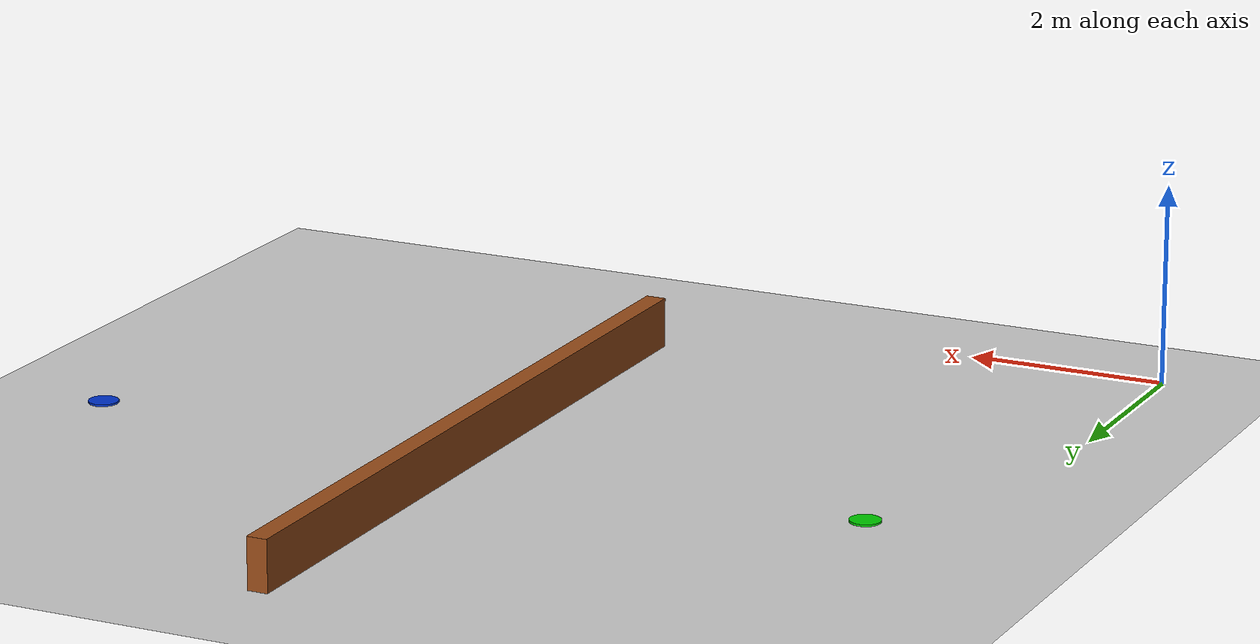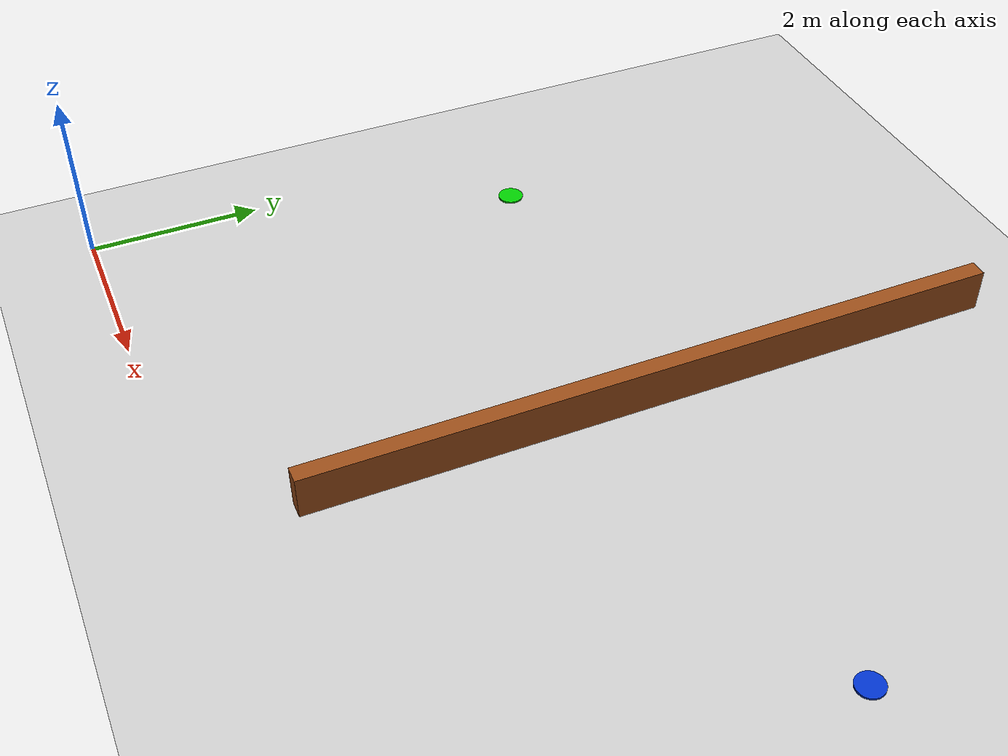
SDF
<?xml version="1.0" ?>
<sdf version="1.6">
  <world name="wall_obstacle_world">

    <physics name="default_physics" default="0" type="ode">
      <max_step_size>0.001</max_step_size>
      <real_time_factor>1</real_time_factor>
      <real_time_update_rate>1000</real_time_update_rate>
    </physics>

    <plugin name="gazebo_ros_state" filename="libgazebo_ros_state.so"/>

    <light name="sun" type="directional">
      <cast_shadows>true</cast_shadows>
      <pose>0 0 10 0 0 0</pose>
      <diffuse>1 1 1 1</diffuse>
      <specular>0.2 0.2 0.2 1</specular>
      <direction>-0.5 0.1 -0.9</direction>
    </light>

    <model name="ground_plane">
      <static>true</static>
      <link name="link">
        <collision name="collision">
          <geometry>
            <plane><normal>0 0 1</normal><size>20 20</size></plane>
          </geometry>
        </collision>
        <visual name="visual">
          <geometry>
            <plane><normal>0 0 1</normal><size>20 20</size></plane>
          </geometry>
          <material>
            <ambient>0.8 0.8 0.8 1</ambient>
            <diffuse>0.8 0.8 0.8 1</diffuse>
          </material>
        </visual>
      </link>
    </model>

    <!--
      Wall: centred at x=5.0, y=5.0 (midpoint of y=1 to y=9).
      size: 0.2 m (x-width) × 8.0 m (y-length) × 0.5 m (height)
    -->
    <model name="wall_obstacle">
      <static>true</static>
      <pose>5.0 5.0 0.25 0 0 0</pose>
      <link name="link">
        <collision name="collision">
          <geometry>
            <box><size>0.2 8.0 0.5</size></box>
          </geometry>
        </collision>
        <visual name="visual">
          <geometry>
            <box><size>0.2 8.0 0.5</size></box>
          </geometry>
          <material>
            <ambient>0.6 0.3 0.1 1</ambient>
            <diffuse>0.6 0.3 0.1 1</diffuse>
          </material>
        </visual>
      </link>
    </model>

    <model name="start_marker">
      <static>true</static>
      <pose>1.0 5.0 0.01 0 0 0</pose>
      <link name="link">
        <visual name="visual">
          <geometry>
            <cylinder><radius>0.15</radius><length>0.02</length></cylinder>
          </geometry>
          <material>
            <ambient>0.0 0.8 0.0 1</ambient>
            <diffuse>0.0 0.8 0.0 1</diffuse>
          </material>
        </visual>
      </link>
    </model>

    <model name="goal_marker">
      <static>true</static>
      <pose>9.0 5.0 0.01 0 0 0</pose>
      <link name="link">
        <visual name="visual">
          <geometry>
            <cylinder><radius>0.15</radius><length>0.02</length></cylinder>
          </geometry>
          <material>
            <ambient>0.0 0.2 0.8 1</ambient>
            <diffuse>0.0 0.2 0.8 1</diffuse>
          </material>
        </visual>
      </link>
    </model>

  </world>
</sdf>
